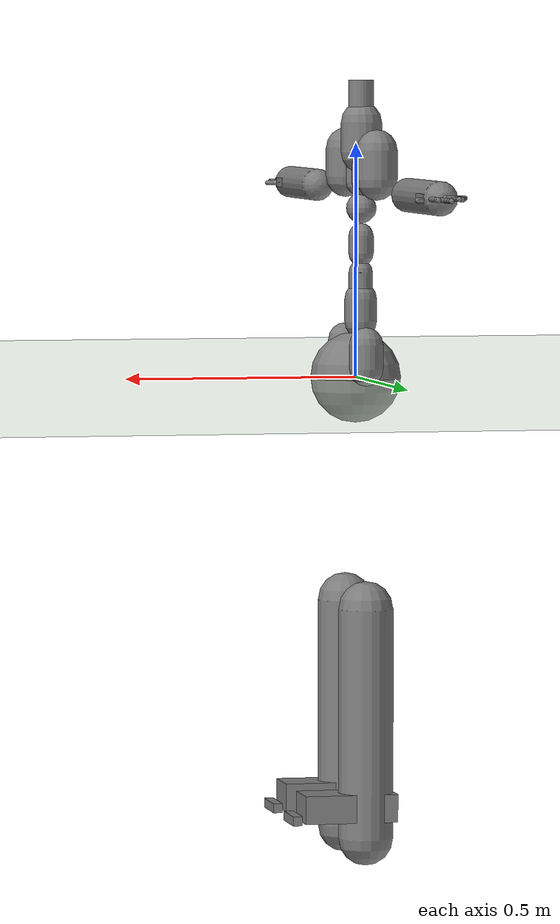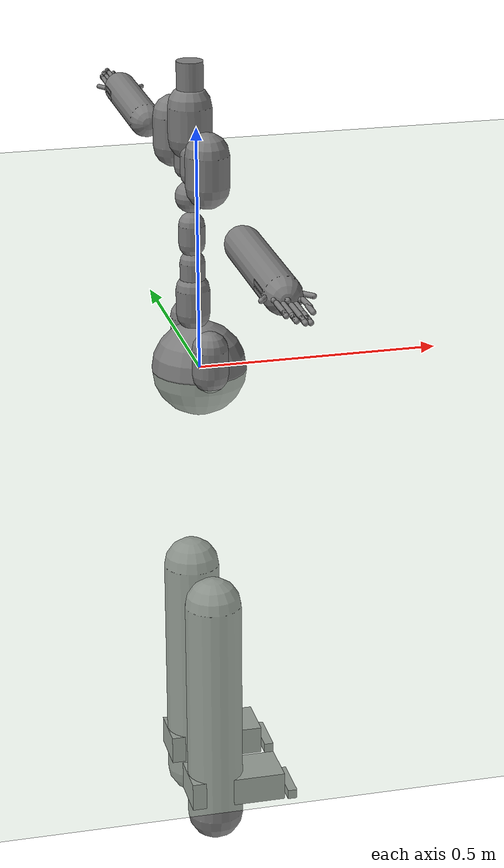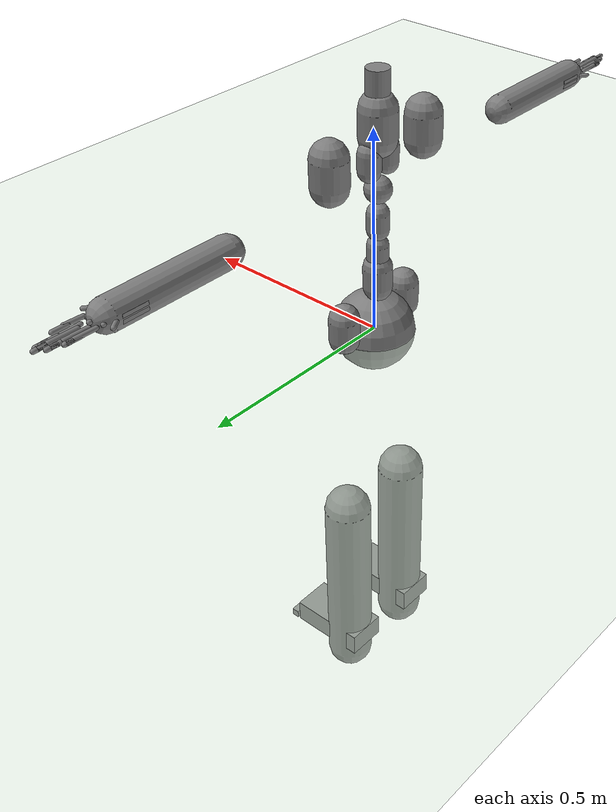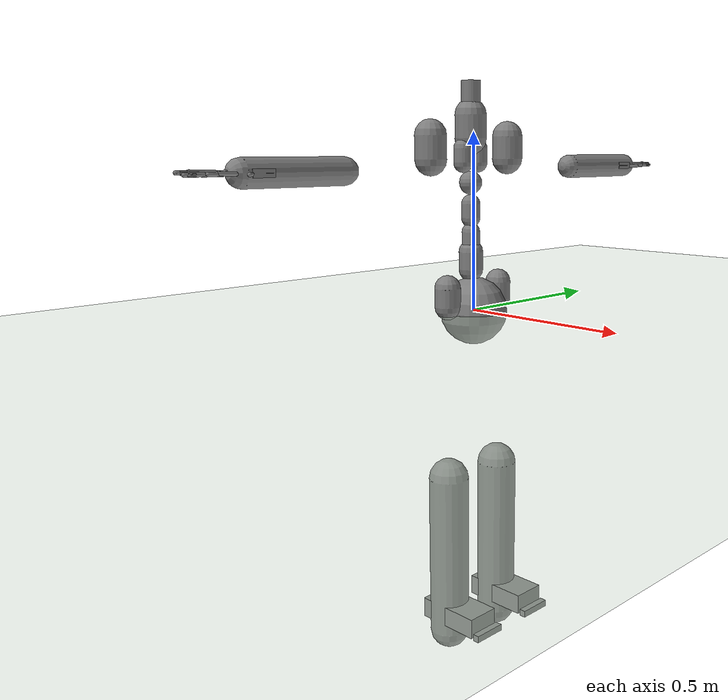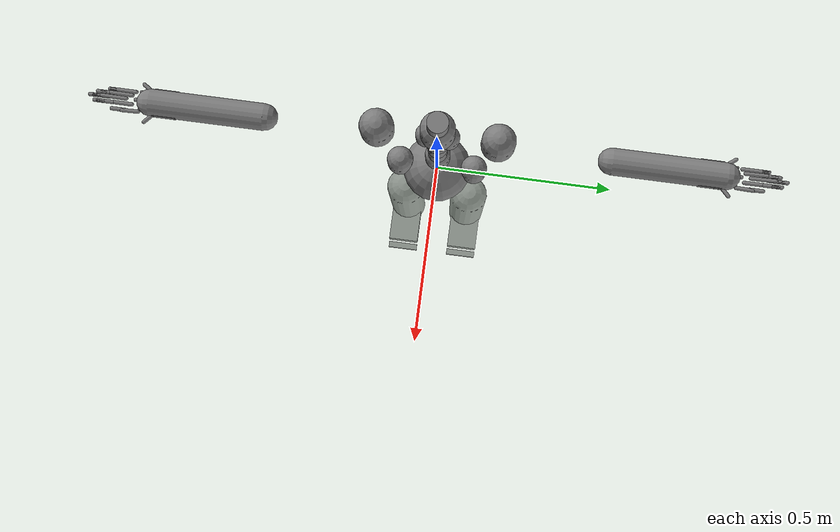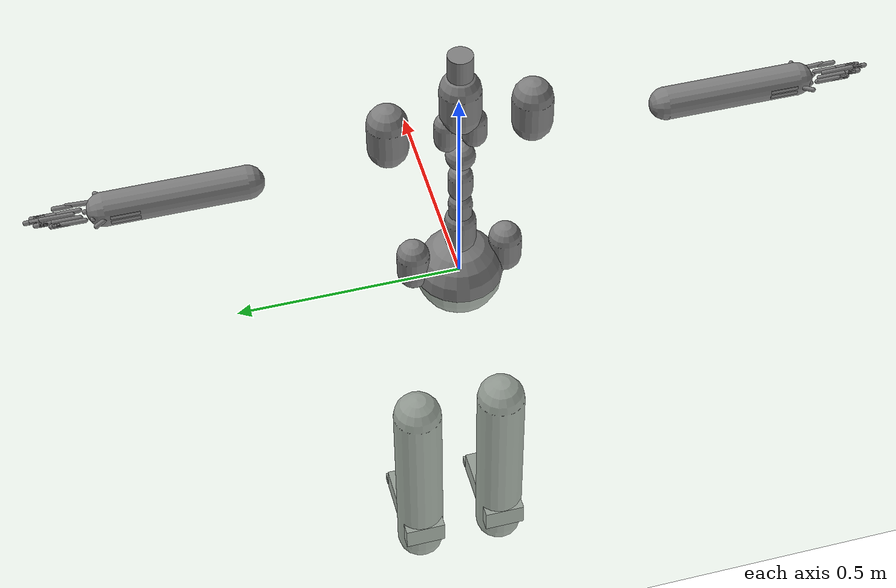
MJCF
<?xml version="1.0" ?>
<mujoco model="humanoid">
  <compiler coordinate="local"/>
  <statistic extent="2" center="0 0 1"/>
  <option timestep="0.00555"/>
  <default>
    <motor ctrlrange="-1 1" ctrllimited="true"/>
    <geom type="capsule" condim="1" friction="1.0 0.05 0.05" solimp=".9 .99 .003" solref=".015 1"/>
    <joint type="hinge" damping="0.1" stiffness="5" armature=".007" limited="true" solimplimit="0 .99 .01"/>
    <site size=".04" group="3"/>
  </default>
  <asset>
    <texture type="skybox" builtin="gradient" rgb1=".4 .5 .6" rgb2="0 0 0" width="100" height="100"/>
    <texture builtin="flat" height="1278" mark="cross" markrgb="1 1 1" name="texgeom" random="0.01" rgb1="0.8 0.6 0.4" rgb2="0.8 0.6 0.4" type="cube" width="127"/>
    <texture builtin="checker" height="100" name="texplane" rgb1="0 0 0" rgb2="0.8 0.8 0.8" type="2d" width="100"/>
    <material name="MatPlane" reflectance="0.5" shininess="1" specular="1" texrepeat="60 60" texture="texplane"/>
    <material name="geom" texture="texgeom" texuniform="true"/>
  </asset>
  <worldbody>
    <light cutoff="100" diffuse="1 1 1" dir="-0 0 -1.3" directional="true" exponent="1" pos="0 0 1.3" specular=".1 .1 .1"/>
    <geom conaffinity="1" condim="3" name="floor" pos="0 0 0" rgba="0.8 0.9 0.8 1" size="100 100 .2" type="plane" material="MatPlane"/>
    <body name="pHipOrigin" pos="0 0 0">
      <freejoint name="pHipOrigin"/>
      <geom type="sphere" contype="1" conaffinity="1" density="4629.6296296296305" size="0.09710" pos="0.0000 0.0000 -0.0000"/>
      <body name="jL5S1" pos="-0.01094197 0 0.09847746">
        <geom type="capsule" contype="1" conaffinity="1" density="1000" fromto="0 0 0.01982 0 0 0.06936" size="0.03468"/>
        <joint name="jL5S1_x" type="hinge" pos="0 0 0" axis="1 0 0" stiffness="500" damping="500" armature="0.02" range="-180.0000 180.0000"/>
        <joint name="jL5S1_y" type="hinge" pos="0 0 0" axis="0 1 0" stiffness="500" damping="500" armature="0.02" range="-180.0000 180.0000"/>
        <joint name="jL5S1_z" type="hinge" pos="0 0 0" axis="0 0 1" stiffness="500" damping="500" armature="0.02" range="-180.0000 180.0000"/>
        <body name="jL4L3" pos="0 0 0.07400486">
          <geom type="capsule" contype="1" conaffinity="1" density="1000" fromto="0 0 0.01480 0 0 0.05180" size="0.02590"/>
          <joint name="jL4L3_x" type="hinge" pos="0 0 0" axis="1 0 0" stiffness="500" damping="500" armature="0.02" range="-180.0000 180.0000"/>
          <joint name="jL4L3_y" type="hinge" pos="0 0 0" axis="0 1 0" stiffness="500" damping="500" armature="0.02" range="-180.0000 180.0000"/>
          <joint name="jL4L3_z" type="hinge" pos="0 0 0" axis="0 0 1" stiffness="500" damping="500" armature="0.02" range="-180.0000 180.0000"/>
          <body name="jL1T12" pos="-0.00058970 0 0.07643582">
            <geom type="capsule" contype="1" conaffinity="1" density="1000" fromto="0 0 0.01529 0 0 0.05351" size="0.02675"/>
            <joint name="jL1T12_x" type="hinge" pos="0 0 0" axis="1 0 0" stiffness="500" damping="500" armature="0.02" range="-180.0000 180.0000"/>
            <joint name="jL1T12_y" type="hinge" pos="0 0 0" axis="0 1 0" stiffness="500" damping="500" armature="0.02" range="-180.0000 180.0000"/>
            <joint name="jL1T12_z" type="hinge" pos="0 0 0" axis="0 0 1" stiffness="500" damping="500" armature="0.02" range="-180.0000 180.0000"/>
            <body name="jT9T8" pos="-0.00062205 0 0.08047241">
              <geom type="sphere" contype="1" conaffinity="1" density="1000" size="0.03219" pos="0.000 0.0000 0.032190"/>
              <joint name="jT9T8_x" type="hinge" pos="0 0 0" axis="1 0 0" stiffness="500" damping="500" armature="0.02" range="-180.0000 180.0000"/>
              <joint name="jT9T8_y" type="hinge" pos="0 0 0" axis="0 1 0" stiffness="500" damping="500" armature="0.02" range="-180.0000 180.0000"/>
              <joint name="jT9T8_z" type="hinge" pos="0 0 0" axis="0 0 1" stiffness="500" damping="500" armature="0.02" range="-180.0000 180.0000"/>
              <body name="jT1C7" pos="0 0 0.12634498">
                <geom type="capsule" contype="1" conaffinity="1" density="1000" fromto="0 0 0.02527 0 0 0.08844" size="0.04422"/>
                <joint name="jT1C7_x" type="hinge" pos="0 0 0" axis="1 0 0" stiffness="500" damping="500" armature="0.02" range="-180.0000 180.0000"/>
                <joint name="jT1C7_y" type="hinge" pos="0 0 0" axis="0 1 0" stiffness="500" damping="500" armature="0.02" range="-180.0000 180.0000"/>
                <joint name="jT1C7_z" type="hinge" pos="0 0 0" axis="0 0 1" stiffness="500" damping="500" armature="0.02" range="-180.0000 180.0000"/>
                <body name="jC1Head" pos="0.00105525 0 0.08944584">
                  <geom type="cylinder" contype="1" conaffinity="1" density="1000" fromto="0 0 0 0 0 0.08945" size="0.02684"/>
                  <joint name="jC1Head_x" type="hinge" pos="0 0 0" axis="1 0 0" stiffness="500" damping="500" armature="0.02" range="-180.0000 180.0000"/>
                  <joint name="jC1Head_y" type="hinge" pos="0 0 0" axis="0 1 0" stiffness="500" damping="500" armature="0.02" range="-180.0000 180.0000"/>
                  <joint name="jC1Head_z" type="hinge" pos="0 0 0" axis="0 0 1" stiffness="500" damping="500" armature="0.02" range="-180.0000 180.0000"/>
                </body>
              </body>
              <body name="jRightT4Shoulder" pos="0 -0.02925832 0.07133821">
                <geom type="capsule" contype="1" conaffinity="1" density="1000" fromto="0 0 0.01542 0 0 0.05397" size="0.02699"/>
                <joint name="jRightT4Shoulder_x" type="hinge" pos="0 0 0" axis="1 0 0" stiffness="500" damping="500" armature="0.02" range="-180.0000 180.0000"/>
                <joint name="jRightT4Shoulder_y" type="hinge" pos="0 0 0" axis="0 1 0" stiffness="500" damping="500" armature="0.02" range="-180.0000 180.0000"/>
                <joint name="jRightT4Shoulder_z" type="hinge" pos="0 0 0" axis="0 0 1" stiffness="500" damping="500" armature="0.02" range="-180.0000 180.0000"/>
                <body name="jRightShoulder" pos="0 -0.12443643 0">
                  <geom type="capsule" contype="1" conaffinity="1" density="1000" fromto="0 0 0.02489 0 0 0.08711" size="0.04355"/>
                  <joint name="jRightShoulder_x" type="hinge" pos="0 0 0" axis="1 0 0" stiffness="500" damping="500" armature="0.02" range="-180.0000 180.0000"/>
                  <joint name="jRightShoulder_y" type="hinge" pos="0 0 0" axis="0 1 0" stiffness="500" damping="500" armature="0.02" range="-180.0000 180.0000"/>
                  <joint name="jRightShoulder_z" type="hinge" pos="0 0 0" axis="0 0 1" stiffness="500" damping="500" armature="0.02" range="-180.0000 180.0000"/>
                  <body name="jRightElbow" pos="0 -0.29274517 0">
                    <geom type="capsule" contype="1" conaffinity="1" density="1000" fromto="0 0 0 0.00000000 -0.29274517 0.00000000" size="0.03513"/>
                    <joint name="jRightElbow_x" type="hinge" pos="0 0 0" axis="1 0 0" stiffness="500" damping="500" armature="0.02" range="-180.0000 180.0000"/>
                    <joint name="jRightElbow_y" type="hinge" pos="0 0 0" axis="0 1 0" stiffness="500" damping="500" armature="0.02" range="-180.0000 180.0000"/>
                    <joint name="jRightElbow_z" type="hinge" pos="0 0 0" axis="0 0 1" stiffness="500" damping="500" armature="0.02" range="-180.0000 180.0000"/>
                    <body name="jRightWrist" pos="0.00010209 -0.25365034 0">
                      <geom density="1000" type="box" pos="0 0 0" size="0.035 0.03 0.01" quat="1.0000 0.0000 0.0000 0.0000"/>
                      <joint name="jRightWrist_x" type="hinge" pos="0 0 0" axis="1 0 0" stiffness="500" damping="500" armature="0.02" range="-180.0000 180.0000"/>
                      <joint name="jRightWrist_y" type="hinge" pos="0 0 0" axis="0 1 0" stiffness="500" damping="500" armature="0.02" range="-180.0000 180.0000"/>
                      <joint name="jRightWrist_z" type="hinge" pos="0 0 0" axis="0 0 1" stiffness="500" damping="500" armature="0.02" range="-180.0000 180.0000"/>
                      <body name="jRightFirstCMC" pos="0.02573850 -0.02467179 -0.00116560">
                        <geom type="capsule" contype="1" conaffinity="1" density="1000" fromto="0 0 0 0.02573850 -0.02467179 -0.00116560" size="0.005"/>
                        <joint name="jRightFirstCMC_x" type="hinge" pos="0 0 0" axis="1 0 0" stiffness="500" damping="500" armature="0.02" range="-180.0000 180.0000"/>
                        <joint name="jRightFirstCMC_y" type="hinge" pos="0 0 0" axis="0 1 0" stiffness="500" damping="500" armature="0.02" range="-180.0000 180.0000"/>
                        <joint name="jRightFirstCMC_z" type="hinge" pos="0 0 0" axis="0 0 1" stiffness="500" damping="500" armature="0.02" range="-180.0000 180.0000"/>
                        <body name="jRightFirstMCP" pos="0.00151179 -0.04266163 0.00090144">
                          <geom type="capsule" contype="1" conaffinity="1" density="1000" fromto="0 0 0 0.00151179 -0.04266163 0.00090144" size="0.005"/>
                          <joint name="jRightFirstMCP_x" type="hinge" pos="0 0 0" axis="1 0 0" stiffness="500" damping="500" armature="0.02" range="-180.0000 180.0000"/>
                          <joint name="jRightFirstMCP_y" type="hinge" pos="0 0 0" axis="0 1 0" stiffness="500" damping="500" armature="0.02" range="-180.0000 180.0000"/>
                          <joint name="jRightFirstMCP_z" type="hinge" pos="0 0 0" axis="0 0 1" stiffness="500" damping="500" armature="0.02" range="-180.0000 180.0000"/>
                          <body name="jRightIP" pos="0 -0.03407430 0">
                            <geom type="capsule" contype="1" conaffinity="1" density="1000" fromto="0 0 0 0.00000000 -0.03407430 0.00000000" size="0.005"/>
                            <joint name="jRightIP_x" type="hinge" pos="0 0 0" axis="1 0 0" stiffness="500" damping="500" armature="0.02" range="-180.0000 180.0000"/>
                            <joint name="jRightIP_y" type="hinge" pos="0 0 0" axis="0 1 0" stiffness="500" damping="500" armature="0.02" range="-180.0000 180.0000"/>
                            <joint name="jRightIP_z" type="hinge" pos="0 0 0" axis="0 0 1" stiffness="500" damping="500" armature="0.02" range="-180.0000 180.0000"/>
                          </body>
                        </body>
                      </body>
                      <body name="jRightSecondCMC" pos="0.01112072 -0.03249121 -0.00056673">
                        <geom type="capsule" contype="1" conaffinity="1" density="1000" fromto="0 0 0 0.01112072 -0.03249121 -0.00056673" size="0.005"/>
                        <joint name="jRightSecondCMC_x" type="hinge" pos="0 0 0" axis="1 0 0" stiffness="500" damping="500" armature="0.02" range="-180.0000 180.0000"/>
                        <joint name="jRightSecondCMC_y" type="hinge" pos="0 0 0" axis="0 1 0" stiffness="500" damping="500" armature="0.02" range="-180.0000 180.0000"/>
                        <joint name="jRightSecondCMC_z" type="hinge" pos="0 0 0" axis="0 0 1" stiffness="500" damping="500" armature="0.02" range="-180.0000 180.0000"/>
                        <body name="jRightSecondMCP" pos="-0.00033891 -0.05405433 -0.00056072">
                          <geom type="capsule" contype="1" conaffinity="1" density="1000" fromto="0 0 0 -0.00033891 -0.05405433 -0.00056072" size="0.005"/>
                          <joint name="jRightSecondMCP_x" type="hinge" pos="0 0 0" axis="1 0 0" stiffness="500" damping="500" armature="0.02" range="-180.0000 180.0000"/>
                          <joint name="jRightSecondMCP_y" type="hinge" pos="0 0 0" axis="0 1 0" stiffness="500" damping="500" armature="0.02" range="-180.0000 180.0000"/>
                          <joint name="jRightSecondMCP_z" type="hinge" pos="0 0 0" axis="0 0 1" stiffness="500" damping="500" armature="0.02" range="-180.0000 180.0000"/>
                          <body name="jRightSecondPIP" pos="0 -0.04823165 0">
                            <geom type="capsule" contype="1" conaffinity="1" density="1000" fromto="0 0 0 0.00000000 -0.04823165 0.00000000" size="0.005"/>
                            <joint name="jRightSecondPIP_x" type="hinge" pos="0 0 0" axis="1 0 0" stiffness="500" damping="500" armature="0.02" range="-180.0000 180.0000"/>
                            <joint name="jRightSecondPIP_y" type="hinge" pos="0 0 0" axis="0 1 0" stiffness="500" damping="500" armature="0.02" range="-180.0000 180.0000"/>
                            <joint name="jRightSecondPIP_z" type="hinge" pos="0 0 0" axis="0 0 1" stiffness="500" damping="500" armature="0.02" range="-180.0000 180.0000"/>
                            <body name="jRightSecondDIP" pos="0 -0.02137110 0">
                              <geom type="capsule" contype="1" conaffinity="1" density="1000" fromto="0 0 0 0.00000000 -0.02137110 0.00000000" size="0.005"/>
                              <joint name="jRightSecondDIP_x" type="hinge" pos="0 0 0" axis="1 0 0" stiffness="500" damping="500" armature="0.02" range="-180.0000 180.0000"/>
                              <joint name="jRightSecondDIP_y" type="hinge" pos="0 0 0" axis="0 1 0" stiffness="500" damping="500" armature="0.02" range="-180.0000 180.0000"/>
                              <joint name="jRightSecondDIP_z" type="hinge" pos="0 0 0" axis="0 0 1" stiffness="500" damping="500" armature="0.02" range="-180.0000 180.0000"/>
                            </body>
                          </body>
                        </body>
                      </body>
                      <body name="jRightThirdCMC" pos="-0.00071286 -0.03854960 0.00162068">
                        <geom type="capsule" contype="1" conaffinity="1" density="1000" fromto="0 0 0 -0.00071286 -0.03854960 0.00162068" size="0.005"/>
                        <joint name="jRightThirdCMC_x" type="hinge" pos="0 0 0" axis="1 0 0" stiffness="500" damping="500" armature="0.02" range="-180.0000 180.0000"/>
                        <joint name="jRightThirdCMC_y" type="hinge" pos="0 0 0" axis="0 1 0" stiffness="500" damping="500" armature="0.02" range="-180.0000 180.0000"/>
                        <joint name="jRightThirdCMC_z" type="hinge" pos="0 0 0" axis="0 0 1" stiffness="500" damping="500" armature="0.02" range="-180.0000 180.0000"/>
                        <body name="jRightThirdMCP" pos="-0.00076003 -0.06296870 0.00171314">
                          <geom type="capsule" contype="1" conaffinity="1" density="1000" fromto="0 0 0 -0.00076003 -0.06296870 0.00171314" size="0.005"/>
                          <joint name="jRightThirdMCP_x" type="hinge" pos="0 0 0" axis="1 0 0" stiffness="500" damping="500" armature="0.02" range="-180.0000 180.0000"/>
                          <joint name="jRightThirdMCP_y" type="hinge" pos="0 0 0" axis="0 1 0" stiffness="500" damping="500" armature="0.02" range="-180.0000 180.0000"/>
                          <joint name="jRightThirdMCP_z" type="hinge" pos="0 0 0" axis="0 0 1" stiffness="500" damping="500" armature="0.02" range="-180.0000 180.0000"/>
                          <body name="jRightThirdPIP" pos="0 -0.04291753 0">
                            <geom type="capsule" contype="1" conaffinity="1" density="1000" fromto="0 0 0 0.00000000 -0.04291753 0.00000000" size="0.005"/>
                            <joint name="jRightThirdPIP_x" type="hinge" pos="0 0 0" axis="1 0 0" stiffness="500" damping="500" armature="0.02" range="-180.0000 180.0000"/>
                            <joint name="jRightThirdPIP_y" type="hinge" pos="0 0 0" axis="0 1 0" stiffness="500" damping="500" armature="0.02" range="-180.0000 180.0000"/>
                            <joint name="jRightThirdPIP_z" type="hinge" pos="0 0 0" axis="0 0 1" stiffness="500" damping="500" armature="0.02" range="-180.0000 180.0000"/>
                            <body name="jRightThirdDIP" pos="0 -0.02528631 0">
                              <geom type="capsule" contype="1" conaffinity="1" density="1000" fromto="0 0 0 0.00000000 -0.02528631 0.00000000" size="0.005"/>
                              <joint name="jRightThirdDIP_x" type="hinge" pos="0 0 0" axis="1 0 0" stiffness="500" damping="500" armature="0.02" range="-180.0000 180.0000"/>
                              <joint name="jRightThirdDIP_y" type="hinge" pos="0 0 0" axis="0 1 0" stiffness="500" damping="500" armature="0.02" range="-180.0000 180.0000"/>
                              <joint name="jRightThirdDIP_z" type="hinge" pos="0 0 0" axis="0 0 1" stiffness="500" damping="500" armature="0.02" range="-180.0000 180.0000"/>
                            </body>
                          </body>
                        </body>
                      </body>
                      <body name="jRightFourthCMC" pos="-0.01161701 -0.03235530 0.00076159">
                        <geom type="capsule" contype="1" conaffinity="1" density="1000" fromto="0 0 0 -0.01161701 -0.03235530 0.00076159" size="0.005"/>
                        <joint name="jRightFourthCMC_x" type="hinge" pos="0 0 0" axis="1 0 0" stiffness="500" damping="500" armature="0.02" range="-180.0000 180.0000"/>
                        <joint name="jRightFourthCMC_y" type="hinge" pos="0 0 0" axis="0 1 0" stiffness="500" damping="500" armature="0.02" range="-180.0000 180.0000"/>
                        <joint name="jRightFourthCMC_z" type="hinge" pos="0 0 0" axis="0 0 1" stiffness="500" damping="500" armature="0.02" range="-180.0000 180.0000"/>
                        <body name="jRightFourthMCP" pos="-0.00040319 -0.05526105 0.00086819">
                          <geom type="capsule" contype="1" conaffinity="1" density="1000" fromto="0 0 0 -0.00040319 -0.05526105 0.00086819" size="0.005"/>
                          <joint name="jRightFourthMCP_x" type="hinge" pos="0 0 0" axis="1 0 0" stiffness="500" damping="500" armature="0.02" range="-180.0000 180.0000"/>
                          <joint name="jRightFourthMCP_y" type="hinge" pos="0 0 0" axis="0 1 0" stiffness="500" damping="500" armature="0.02" range="-180.0000 180.0000"/>
                          <joint name="jRightFourthMCP_z" type="hinge" pos="0 0 0" axis="0 0 1" stiffness="500" damping="500" armature="0.02" range="-180.0000 180.0000"/>
                          <body name="jRightFourthPIP" pos="0 -0.04075918 0">
                            <geom type="capsule" contype="1" conaffinity="1" density="1000" fromto="0 0 0 0.00000000 -0.04075918 0.00000000" size="0.005"/>
                            <joint name="jRightFourthPIP_x" type="hinge" pos="0 0 0" axis="1 0 0" stiffness="500" damping="500" armature="0.02" range="-180.0000 180.0000"/>
                            <joint name="jRightFourthPIP_y" type="hinge" pos="0 0 0" axis="0 1 0" stiffness="500" damping="500" armature="0.02" range="-180.0000 180.0000"/>
                            <joint name="jRightFourthPIP_z" type="hinge" pos="0 0 0" axis="0 0 1" stiffness="500" damping="500" armature="0.02" range="-180.0000 180.0000"/>
                            <body name="jRightFourthDIP" pos="0 -0.02408913 0">
                              <geom type="capsule" contype="1" conaffinity="1" density="1000" fromto="0 0 0 0.00000000 -0.02408913 0.00000000" size="0.005"/>
                              <joint name="jRightFourthDIP_x" type="hinge" pos="0 0 0" axis="1 0 0" stiffness="500" damping="500" armature="0.02" range="-180.0000 180.0000"/>
                              <joint name="jRightFourthDIP_y" type="hinge" pos="0 0 0" axis="0 1 0" stiffness="500" damping="500" armature="0.02" range="-180.0000 180.0000"/>
                              <joint name="jRightFourthDIP_z" type="hinge" pos="0 0 0" axis="0 0 1" stiffness="500" damping="500" armature="0.02" range="-180.0000 180.0000"/>
                            </body>
                          </body>
                        </body>
                      </body>
                      <body name="jRightFifthCMC" pos="-0.02190992 -0.03052898 0.00060224">
                        <geom type="capsule" contype="1" conaffinity="1" density="1000" fromto="0 0 0 -0.02190992 -0.03052898 0.00060224" size="0.005"/>
                        <joint name="jRightFifthCMC_x" type="hinge" pos="0 0 0" axis="1 0 0" stiffness="500" damping="500" armature="0.02" range="-180.0000 180.0000"/>
                        <joint name="jRightFifthCMC_y" type="hinge" pos="0 0 0" axis="0 1 0" stiffness="500" damping="500" armature="0.02" range="-180.0000 180.0000"/>
                        <joint name="jRightFifthCMC_z" type="hinge" pos="0 0 0" axis="0 0 1" stiffness="500" damping="500" armature="0.02" range="-180.0000 180.0000"/>
                        <body name="jRightFifthMCP" pos="-0.00000716 -0.04846844 0.00066699">
                          <geom type="capsule" contype="1" conaffinity="1" density="1000" fromto="0 0 0 -0.00000716 -0.04846844 0.00066699" size="0.005"/>
                          <joint name="jRightFifthMCP_x" type="hinge" pos="0 0 0" axis="1 0 0" stiffness="500" damping="500" armature="0.02" range="-180.0000 180.0000"/>
                          <joint name="jRightFifthMCP_y" type="hinge" pos="0 0 0" axis="0 1 0" stiffness="500" damping="500" armature="0.02" range="-180.0000 180.0000"/>
                          <joint name="jRightFifthMCP_z" type="hinge" pos="0 0 0" axis="0 0 1" stiffness="500" damping="500" armature="0.02" range="-180.0000 180.0000"/>
                          <body name="jRightFifthPIP" pos="0 -0.03392392 0">
                            <geom type="capsule" contype="1" conaffinity="1" density="1000" fromto="0 0 0 0.00000000 -0.03392392 0.00000000" size="0.005"/>
                            <joint name="jRightFifthPIP_x" type="hinge" pos="0 0 0" axis="1 0 0" stiffness="500" damping="500" armature="0.02" range="-180.0000 180.0000"/>
                            <joint name="jRightFifthPIP_y" type="hinge" pos="0 0 0" axis="0 1 0" stiffness="500" damping="500" armature="0.02" range="-180.0000 180.0000"/>
                            <joint name="jRightFifthPIP_z" type="hinge" pos="0 0 0" axis="0 0 1" stiffness="500" damping="500" armature="0.02" range="-180.0000 180.0000"/>
                            <body name="jRightFifthDIP" pos="0 -0.01613869 0">
                              <geom type="capsule" contype="1" conaffinity="1" density="1000" fromto="0 0 0 0.00000000 -0.01613869 0.00000000" size="0.005"/>
                              <joint name="jRightFifthDIP_x" type="hinge" pos="0 0 0" axis="1 0 0" stiffness="500" damping="500" armature="0.02" range="-180.0000 180.0000"/>
                              <joint name="jRightFifthDIP_y" type="hinge" pos="0 0 0" axis="0 1 0" stiffness="500" damping="500" armature="0.02" range="-180.0000 180.0000"/>
                              <joint name="jRightFifthDIP_z" type="hinge" pos="0 0 0" axis="0 0 1" stiffness="500" damping="500" armature="0.02" range="-180.0000 180.0000"/>
                            </body>
                          </body>
                        </body>
                      </body>
                    </body>
                  </body>
                </body>
              </body>
              <body name="jLeftT4Shoulder" pos="0 0.02917826 0.07114300">
                <geom type="capsule" contype="1" conaffinity="1" density="1000" fromto="0 0 0.01538 0 0 0.05383" size="0.02691"/>
                <joint name="jLeftT4Shoulder_x" type="hinge" pos="0 0 0" axis="1 0 0" stiffness="500" damping="500" armature="0.02" range="-180.0000 180.0000"/>
                <joint name="jLeftT4Shoulder_y" type="hinge" pos="0 0 0" axis="0 1 0" stiffness="500" damping="500" armature="0.02" range="-180.0000 180.0000"/>
                <joint name="jLeftT4Shoulder_z" type="hinge" pos="0 0 0" axis="0 0 1" stiffness="500" damping="500" armature="0.02" range="-180.0000 180.0000"/>
                <body name="jLeftShoulder" pos="0 0.12417934 0">
                  <geom type="capsule" contype="1" conaffinity="1" density="1000" fromto="0 0 0.02484 0 0 0.08693" size="0.04346"/>
                  <joint name="jLeftShoulder_x" type="hinge" pos="0 0 0" axis="1 0 0" stiffness="500" damping="500" armature="0.02" range="-180.0000 180.0000"/>
                  <joint name="jLeftShoulder_y" type="hinge" pos="0 0 0" axis="0 1 0" stiffness="500" damping="500" armature="0.02" range="-180.0000 180.0000"/>
                  <joint name="jLeftShoulder_z" type="hinge" pos="0 0 0" axis="0 0 1" stiffness="500" damping="500" armature="0.02" range="-180.0000 180.0000"/>
                  <body name="jLeftElbow" pos="0 0.29295480 0">
                    <geom type="capsule" contype="1" conaffinity="1" density="1000" fromto="0 0 0 0.00000000 0.29295480 0.00000000" size="0.03515"/>
                    <joint name="jLeftElbow_x" type="hinge" pos="0 0 0" axis="1 0 0" stiffness="500" damping="500" armature="0.02" range="-180.0000 180.0000"/>
                    <joint name="jLeftElbow_y" type="hinge" pos="0 0 0" axis="0 1 0" stiffness="500" damping="500" armature="0.02" range="-180.0000 180.0000"/>
                    <joint name="jLeftElbow_z" type="hinge" pos="0 0 0" axis="0 0 1" stiffness="500" damping="500" armature="0.02" range="-180.0000 180.0000"/>
                    <body name="jLeftWrist" pos="0.00010190 0.25317598 0">
                      <geom density="1000" type="box" pos="0 0 0" size="0.035 0.03 0.01" quat="1.0000 0.0000 0.0000 0.0000"/>
                      <joint name="jLeftWrist_x" type="hinge" pos="0 0 0" axis="1 0 0" stiffness="500" damping="500" armature="0.02" range="-180.0000 180.0000"/>
                      <joint name="jLeftWrist_y" type="hinge" pos="0 0 0" axis="0 1 0" stiffness="500" damping="500" armature="0.02" range="-180.0000 180.0000"/>
                      <joint name="jLeftWrist_z" type="hinge" pos="0 0 0" axis="0 0 1" stiffness="500" damping="500" armature="0.02" range="-180.0000 180.0000"/>
                      <body name="jLeftFirstCMC" pos="0.02519193 0.02525142 -0.00112751">
                        <geom type="capsule" contype="1" conaffinity="1" density="1000" fromto="0 0 0 0.02519193 0.02525142 -0.00112751" size="0.005"/>
                        <joint name="jLeftFirstCMC_x" type="hinge" pos="0 0 0" axis="1 0 0" stiffness="500" damping="500" armature="0.02" range="-180.0000 180.0000"/>
                        <joint name="jLeftFirstCMC_y" type="hinge" pos="0 0 0" axis="0 1 0" stiffness="500" damping="500" armature="0.02" range="-180.0000 180.0000"/>
                        <joint name="jLeftFirstCMC_z" type="hinge" pos="0 0 0" axis="0 0 1" stiffness="500" damping="500" armature="0.02" range="-180.0000 180.0000"/>
                        <body name="jLeftFirstMCP" pos="0.00149722 0.04266066 0.00087849">
                          <geom type="capsule" contype="1" conaffinity="1" density="1000" fromto="0 0 0 0.00149722 0.04266066 0.00087849" size="0.005"/>
                          <joint name="jLeftFirstMCP_x" type="hinge" pos="0 0 0" axis="1 0 0" stiffness="500" damping="500" armature="0.02" range="-180.0000 180.0000"/>
                          <joint name="jLeftFirstMCP_y" type="hinge" pos="0 0 0" axis="0 1 0" stiffness="500" damping="500" armature="0.02" range="-180.0000 180.0000"/>
                          <joint name="jLeftFirstMCP_z" type="hinge" pos="0 0 0" axis="0 0 1" stiffness="500" damping="500" armature="0.02" range="-180.0000 180.0000"/>
                          <body name="jLeftIP" pos="0 0.03407430 0">
                            <geom type="capsule" contype="1" conaffinity="1" density="1000" fromto="0 0 0 0.00000000 0.03407430 0.00000000" size="0.005"/>
                            <joint name="jLeftIP_x" type="hinge" pos="0 0 0" axis="1 0 0" stiffness="500" damping="500" armature="0.02" range="-180.0000 180.0000"/>
                            <joint name="jLeftIP_y" type="hinge" pos="0 0 0" axis="0 1 0" stiffness="500" damping="500" armature="0.02" range="-180.0000 180.0000"/>
                            <joint name="jLeftIP_z" type="hinge" pos="0 0 0" axis="0 0 1" stiffness="500" damping="500" armature="0.02" range="-180.0000 180.0000"/>
                          </body>
                        </body>
                      </body>
                      <body name="jLeftSecondCMC" pos="0.01124881 0.03243143 -0.00057141">
                        <geom type="capsule" contype="1" conaffinity="1" density="1000" fromto="0 0 0 0.01124881 0.03243143 -0.00057141" size="0.005"/>
                        <joint name="jLeftSecondCMC_x" type="hinge" pos="0 0 0" axis="1 0 0" stiffness="500" damping="500" armature="0.02" range="-180.0000 180.0000"/>
                        <joint name="jLeftSecondCMC_y" type="hinge" pos="0 0 0" axis="0 1 0" stiffness="500" damping="500" armature="0.02" range="-180.0000 180.0000"/>
                        <joint name="jLeftSecondCMC_z" type="hinge" pos="0 0 0" axis="0 0 1" stiffness="500" damping="500" armature="0.02" range="-180.0000 180.0000"/>
                        <body name="jLeftSecondMCP" pos="-0.00029551 0.05405544 -0.00056765">
                          <geom type="capsule" contype="1" conaffinity="1" density="1000" fromto="0 0 0 -0.00029551 0.05405544 -0.00056765" size="0.005"/>
                          <joint name="jLeftSecondMCP_x" type="hinge" pos="0 0 0" axis="1 0 0" stiffness="500" damping="500" armature="0.02" range="-180.0000 180.0000"/>
                          <joint name="jLeftSecondMCP_y" type="hinge" pos="0 0 0" axis="0 1 0" stiffness="500" damping="500" armature="0.02" range="-180.0000 180.0000"/>
                          <joint name="jLeftSecondMCP_z" type="hinge" pos="0 0 0" axis="0 0 1" stiffness="500" damping="500" armature="0.02" range="-180.0000 180.0000"/>
                          <body name="jLeftSecondPIP" pos="0 0.04823165 0">
                            <geom type="capsule" contype="1" conaffinity="1" density="1000" fromto="0 0 0 0.00000000 0.04823165 0.00000000" size="0.005"/>
                            <joint name="jLeftSecondPIP_x" type="hinge" pos="0 0 0" axis="1 0 0" stiffness="500" damping="500" armature="0.02" range="-180.0000 180.0000"/>
                            <joint name="jLeftSecondPIP_y" type="hinge" pos="0 0 0" axis="0 1 0" stiffness="500" damping="500" armature="0.02" range="-180.0000 180.0000"/>
                            <joint name="jLeftSecondPIP_z" type="hinge" pos="0 0 0" axis="0 0 1" stiffness="500" damping="500" armature="0.02" range="-180.0000 180.0000"/>
                            <body name="jLeftSecondDIP" pos="0 0.02137110 0">
                              <geom type="capsule" contype="1" conaffinity="1" density="1000" fromto="0 0 0 0.00000000 0.02137110 0.00000000" size="0.005"/>
                              <joint name="jLeftSecondDIP_x" type="hinge" pos="0 0 0" axis="1 0 0" stiffness="500" damping="500" armature="0.02" range="-180.0000 180.0000"/>
                              <joint name="jLeftSecondDIP_y" type="hinge" pos="0 0 0" axis="0 1 0" stiffness="500" damping="500" armature="0.02" range="-180.0000 180.0000"/>
                              <joint name="jLeftSecondDIP_z" type="hinge" pos="0 0 0" axis="0 0 1" stiffness="500" damping="500" armature="0.02" range="-180.0000 180.0000"/>
                            </body>
                          </body>
                        </body>
                      </body>
                      <body name="jLeftThirdCMC" pos="-0.00071704 0.03855306 0.00156666">
                        <geom type="capsule" contype="1" conaffinity="1" density="1000" fromto="0 0 0 -0.00071704 0.03855306 0.00156666" size="0.005"/>
                        <joint name="jLeftThirdCMC_x" type="hinge" pos="0 0 0" axis="1 0 0" stiffness="500" damping="500" armature="0.02" range="-180.0000 180.0000"/>
                        <joint name="jLeftThirdCMC_y" type="hinge" pos="0 0 0" axis="0 1 0" stiffness="500" damping="500" armature="0.02" range="-180.0000 180.0000"/>
                        <joint name="jLeftThirdCMC_z" type="hinge" pos="0 0 0" axis="0 0 1" stiffness="500" damping="500" armature="0.02" range="-180.0000 180.0000"/>
                        <body name="jLeftThirdMCP" pos="-0.00076617 0.06296992 0.00167870">
                          <geom type="capsule" contype="1" conaffinity="1" density="1000" fromto="0 0 0 -0.00076617 0.06296992 0.00167870" size="0.005"/>
                          <joint name="jLeftThirdMCP_x" type="hinge" pos="0 0 0" axis="1 0 0" stiffness="500" damping="500" armature="0.02" range="-180.0000 180.0000"/>
                          <joint name="jLeftThirdMCP_y" type="hinge" pos="0 0 0" axis="0 1 0" stiffness="500" damping="500" armature="0.02" range="-180.0000 180.0000"/>
                          <joint name="jLeftThirdMCP_z" type="hinge" pos="0 0 0" axis="0 0 1" stiffness="500" damping="500" armature="0.02" range="-180.0000 180.0000"/>
                          <body name="jLeftThirdPIP" pos="0 0.04291753 0">
                            <geom type="capsule" contype="1" conaffinity="1" density="1000" fromto="0 0 0 0.00000000 0.04291753 0.00000000" size="0.005"/>
                            <joint name="jLeftThirdPIP_x" type="hinge" pos="0 0 0" axis="1 0 0" stiffness="500" damping="500" armature="0.02" range="-180.0000 180.0000"/>
                            <joint name="jLeftThirdPIP_y" type="hinge" pos="0 0 0" axis="0 1 0" stiffness="500" damping="500" armature="0.02" range="-180.0000 180.0000"/>
                            <joint name="jLeftThirdPIP_z" type="hinge" pos="0 0 0" axis="0 0 1" stiffness="500" damping="500" armature="0.02" range="-180.0000 180.0000"/>
                            <body name="jLeftThirdDIP" pos="0 0.02528631 0">
                              <geom type="capsule" contype="1" conaffinity="1" density="1000" fromto="0 0 0 0.00000000 0.02528631 0.00000000" size="0.005"/>
                              <joint name="jLeftThirdDIP_x" type="hinge" pos="0 0 0" axis="1 0 0" stiffness="500" damping="500" armature="0.02" range="-180.0000 180.0000"/>
                              <joint name="jLeftThirdDIP_y" type="hinge" pos="0 0 0" axis="0 1 0" stiffness="500" damping="500" armature="0.02" range="-180.0000 180.0000"/>
                              <joint name="jLeftThirdDIP_z" type="hinge" pos="0 0 0" axis="0 0 1" stiffness="500" damping="500" armature="0.02" range="-180.0000 180.0000"/>
                            </body>
                          </body>
                        </body>
                      </body>
                      <body name="jLeftFourthCMC" pos="-0.01204328 0.03218980 0.00081299">
                        <geom type="capsule" contype="1" conaffinity="1" density="1000" fromto="0 0 0 -0.01204328 0.03218980 0.00081299" size="0.005"/>
                        <joint name="jLeftFourthCMC_x" type="hinge" pos="0 0 0" axis="1 0 0" stiffness="500" damping="500" armature="0.02" range="-180.0000 180.0000"/>
                        <joint name="jLeftFourthCMC_y" type="hinge" pos="0 0 0" axis="0 1 0" stiffness="500" damping="500" armature="0.02" range="-180.0000 180.0000"/>
                        <joint name="jLeftFourthCMC_z" type="hinge" pos="0 0 0" axis="0 0 1" stiffness="500" damping="500" armature="0.02" range="-180.0000 180.0000"/>
                        <body name="jLeftFourthMCP" pos="-0.00043359 0.05525789 0.00091822">
                          <geom type="capsule" contype="1" conaffinity="1" density="1000" fromto="0 0 0 -0.00043359 0.05525789 0.00091822" size="0.005"/>
                          <joint name="jLeftFourthMCP_x" type="hinge" pos="0 0 0" axis="1 0 0" stiffness="500" damping="500" armature="0.02" range="-180.0000 180.0000"/>
                          <joint name="jLeftFourthMCP_y" type="hinge" pos="0 0 0" axis="0 1 0" stiffness="500" damping="500" armature="0.02" range="-180.0000 180.0000"/>
                          <joint name="jLeftFourthMCP_z" type="hinge" pos="0 0 0" axis="0 0 1" stiffness="500" damping="500" armature="0.02" range="-180.0000 180.0000"/>
                          <body name="jLeftFourthPIP" pos="0 0.04075918 0">
                            <geom type="capsule" contype="1" conaffinity="1" density="1000" fromto="0 0 0 0.00000000 0.04075918 0.00000000" size="0.005"/>
                            <joint name="jLeftFourthPIP_x" type="hinge" pos="0 0 0" axis="1 0 0" stiffness="500" damping="500" armature="0.02" range="-180.0000 180.0000"/>
                            <joint name="jLeftFourthPIP_y" type="hinge" pos="0 0 0" axis="0 1 0" stiffness="500" damping="500" armature="0.02" range="-180.0000 180.0000"/>
                            <joint name="jLeftFourthPIP_z" type="hinge" pos="0 0 0" axis="0 0 1" stiffness="500" damping="500" armature="0.02" range="-180.0000 180.0000"/>
                            <body name="jLeftFourthDIP" pos="0 0.02408913 0">
                              <geom type="capsule" contype="1" conaffinity="1" density="1000" fromto="0 0 0 0.00000000 0.02408913 0.00000000" size="0.005"/>
                              <joint name="jLeftFourthDIP_x" type="hinge" pos="0 0 0" axis="1 0 0" stiffness="500" damping="500" armature="0.02" range="-180.0000 180.0000"/>
                              <joint name="jLeftFourthDIP_y" type="hinge" pos="0 0 0" axis="0 1 0" stiffness="500" damping="500" armature="0.02" range="-180.0000 180.0000"/>
                              <joint name="jLeftFourthDIP_z" type="hinge" pos="0 0 0" axis="0 0 1" stiffness="500" damping="500" armature="0.02" range="-180.0000 180.0000"/>
                            </body>
                          </body>
                        </body>
                      </body>
                      <body name="jLeftFifthCMC" pos="-0.02257366 0.03004634 0.00061192">
                        <geom type="capsule" contype="1" conaffinity="1" density="1000" fromto="0 0 0 -0.02257366 0.03004634 0.00061192" size="0.005"/>
                        <joint name="jLeftFifthCMC_x" type="hinge" pos="0 0 0" axis="1 0 0" stiffness="500" damping="500" armature="0.02" range="-180.0000 180.0000"/>
                        <joint name="jLeftFifthCMC_y" type="hinge" pos="0 0 0" axis="0 1 0" stiffness="500" damping="500" armature="0.02" range="-180.0000 180.0000"/>
                        <joint name="jLeftFifthCMC_z" type="hinge" pos="0 0 0" axis="0 0 1" stiffness="500" damping="500" armature="0.02" range="-180.0000 180.0000"/>
                        <body name="jLeftFifthMCP" pos="-0.00001375 0.04846712 0.00069741">
                          <geom type="capsule" contype="1" conaffinity="1" density="1000" fromto="0 0 0 -0.00001375 0.04846712 0.00069741" size="0.005"/>
                          <joint name="jLeftFifthMCP_x" type="hinge" pos="0 0 0" axis="1 0 0" stiffness="500" damping="500" armature="0.02" range="-180.0000 180.0000"/>
                          <joint name="jLeftFifthMCP_y" type="hinge" pos="0 0 0" axis="0 1 0" stiffness="500" damping="500" armature="0.02" range="-180.0000 180.0000"/>
                          <joint name="jLeftFifthMCP_z" type="hinge" pos="0 0 0" axis="0 0 1" stiffness="500" damping="500" armature="0.02" range="-180.0000 180.0000"/>
                          <body name="jLeftFifthPIP" pos="0 0.03392392 0">
                            <geom type="capsule" contype="1" conaffinity="1" density="1000" fromto="0 0 0 0.00000000 0.03392392 0.00000000" size="0.005"/>
                            <joint name="jLeftFifthPIP_x" type="hinge" pos="0 0 0" axis="1 0 0" stiffness="500" damping="500" armature="0.02" range="-180.0000 180.0000"/>
                            <joint name="jLeftFifthPIP_y" type="hinge" pos="0 0 0" axis="0 1 0" stiffness="500" damping="500" armature="0.02" range="-180.0000 180.0000"/>
                            <joint name="jLeftFifthPIP_z" type="hinge" pos="0 0 0" axis="0 0 1" stiffness="500" damping="500" armature="0.02" range="-180.0000 180.0000"/>
                            <body name="jLeftFifthDIP" pos="0 0.01613869 0">
                              <geom type="capsule" contype="1" conaffinity="1" density="1000" fromto="0 0 0 0.00000000 0.01613869 0.00000000" size="0.005"/>
                              <joint name="jLeftFifthDIP_x" type="hinge" pos="0 0 0" axis="1 0 0" stiffness="500" damping="500" armature="0.02" range="-180.0000 180.0000"/>
                              <joint name="jLeftFifthDIP_y" type="hinge" pos="0 0 0" axis="0 1 0" stiffness="500" damping="500" armature="0.02" range="-180.0000 180.0000"/>
                              <joint name="jLeftFifthDIP_z" type="hinge" pos="0 0 0" axis="0 0 1" stiffness="500" damping="500" armature="0.02" range="-180.0000 180.0000"/>
                            </body>
                          </body>
                        </body>
                      </body>
                    </body>
                  </body>
                </body>
              </body>
            </body>
          </body>
        </body>
      </body>
      <body name="jRightHip" pos="-0.00017719 -0.10515210 0.00159513">
        <geom type="capsule" contype="1" conaffinity="1" density="1000" fromto="0 0 0.02103 0 0 0.07362" size="0.03681"/>
        <joint name="jRightHip_x" type="hinge" pos="0 0 0" axis="1 0 0" stiffness="500" damping="500" armature="0.02" range="-180.0000 180.0000"/>
        <joint name="jRightHip_y" type="hinge" pos="0 0 0" axis="0 1 0" stiffness="500" damping="500" armature="0.02" range="-180.0000 180.0000"/>
        <joint name="jRightHip_z" type="hinge" pos="0 0 0" axis="0 0 1" stiffness="500" damping="500" armature="0.02" range="-180.0000 180.0000"/>
        <body name="jRightKnee" pos="0.00005842 0 -0.48996594">
          <geom type="capsule" contype="1" conaffinity="1" density="1000" fromto="0 0 0 0.00005842 0.00000000 -0.48996594" size="0.05880"/>
          <joint name="jRightKnee_x" type="hinge" pos="0 0 0" axis="1 0 0" stiffness="500" damping="500" armature="0.02" range="-180.0000 180.0000"/>
          <joint name="jRightKnee_y" type="hinge" pos="0 0 0" axis="0 1 0" stiffness="500" damping="500" armature="0.02" range="-180.0000 180.0000"/>
          <joint name="jRightKnee_z" type="hinge" pos="0 0 0" axis="0 0 1" stiffness="500" damping="500" armature="0.02" range="-180.0000 180.0000"/>
          <body name="jRightAnkle" pos="0.00044377 0 -0.39301282">
            <geom density="1000" type="box" pos="0.04 0. -0.03" size="0.1 0.05 0.03" quat="1.0 0 0 0"/>
            <joint name="jRightAnkle_x" type="hinge" pos="0 0 0" axis="1 0 0" stiffness="500" damping="500" armature="0.02" range="-180.0000 180.0000"/>
            <joint name="jRightAnkle_y" type="hinge" pos="0 0 0" axis="0 1 0" stiffness="500" damping="500" armature="0.02" range="-180.0000 180.0000"/>
            <joint name="jRightAnkle_z" type="hinge" pos="0 0 0" axis="0 0 1" stiffness="500" damping="500" armature="0.02" range="-180.0000 180.0000"/>
            <body name="jRightBallFoot" pos="0.15755338 0 -0.07227935">
              <geom density="1000" type="box" pos="0 0 0.02" size="0.01 0.05 0.01" quat="1.0 0 0 0"/>
              <joint name="jRightBallFoot_x" type="hinge" pos="0 0 0" axis="1 0 0" stiffness="500" damping="500" armature="0.02" range="-180.0000 180.0000"/>
              <joint name="jRightBallFoot_y" type="hinge" pos="0 0 0" axis="0 1 0" stiffness="500" damping="500" armature="0.02" range="-180.0000 180.0000"/>
              <joint name="jRightBallFoot_z" type="hinge" pos="0 0 0" axis="0 0 1" stiffness="500" damping="500" armature="0.02" range="-180.0000 180.0000"/>
            </body>
          </body>
        </body>
      </body>
      <body name="jLeftHip" pos="-0.00017306 0.10404393 0.00155744">
        <geom type="capsule" contype="1" conaffinity="1" density="1000" fromto="0 0 0.02081 0 0 0.07284" size="0.03642"/>
        <joint name="jLeftHip_x" type="hinge" pos="0 0 0" axis="1 0 0" stiffness="500" damping="500" armature="0.02" range="-180.0000 180.0000"/>
        <joint name="jLeftHip_y" type="hinge" pos="0 0 0" axis="0 1 0" stiffness="500" damping="500" armature="0.02" range="-180.0000 180.0000"/>
        <joint name="jLeftHip_z" type="hinge" pos="0 0 0" axis="0 0 1" stiffness="500" damping="500" armature="0.02" range="-180.0000 180.0000"/>
        <body name="jLeftKnee" pos="0.00005853 0 -0.49088898">
          <geom type="capsule" contype="1" conaffinity="1" density="1000" fromto="0 0 0 0.00005853 0.00000000 -0.49088898" size="0.05891"/>
          <joint name="jLeftKnee_x" type="hinge" pos="0 0 0" axis="1 0 0" stiffness="500" damping="500" armature="0.02" range="-180.0000 180.0000"/>
          <joint name="jLeftKnee_y" type="hinge" pos="0 0 0" axis="0 1 0" stiffness="500" damping="500" armature="0.02" range="-180.0000 180.0000"/>
          <joint name="jLeftKnee_z" type="hinge" pos="0 0 0" axis="0 0 1" stiffness="500" damping="500" armature="0.02" range="-180.0000 180.0000"/>
          <body name="jLeftAnkle" pos="0.00044377 0 -0.39301273">
            <geom density="1000" type="box" pos="0.04 0. -0.03" size="0.1 0.05 0.03" quat="1.0 0 0 0"/>
            <joint name="jLeftAnkle_x" type="hinge" pos="0 0 0" axis="1 0 0" stiffness="500" damping="500" armature="0.02" range="-180.0000 180.0000"/>
            <joint name="jLeftAnkle_y" type="hinge" pos="0 0 0" axis="0 1 0" stiffness="500" damping="500" armature="0.02" range="-180.0000 180.0000"/>
            <joint name="jLeftAnkle_z" type="hinge" pos="0 0 0" axis="0 0 1" stiffness="500" damping="500" armature="0.02" range="-180.0000 180.0000"/>
            <body name="jLeftBallFoot" pos="0.15755341 0 -0.07227936">
              <geom density="1000" type="box" pos="0 0 0.02" size="0.01 0.05 0.01" quat="1.0 0 0 0"/>
              <joint name="jLeftBallFoot_x" type="hinge" pos="0 0 0" axis="1 0 0" stiffness="500" damping="500" armature="0.02" range="-180.0000 180.0000"/>
              <joint name="jLeftBallFoot_y" type="hinge" pos="0 0 0" axis="0 1 0" stiffness="500" damping="500" armature="0.02" range="-180.0000 180.0000"/>
              <joint name="jLeftBallFoot_z" type="hinge" pos="0 0 0" axis="0 0 1" stiffness="500" damping="500" armature="0.02" range="-180.0000 180.0000"/>
            </body>
          </body>
        </body>
      </body>
    </body>
  </worldbody>
  <actuator>
    <motor name="jL5S1_x" joint="jL5S1_x" gear="500"/>
    <motor name="jL5S1_y" joint="jL5S1_y" gear="500"/>
    <motor name="jL5S1_z" joint="jL5S1_z" gear="500"/>
    <motor name="jL4L3_x" joint="jL4L3_x" gear="500"/>
    <motor name="jL4L3_y" joint="jL4L3_y" gear="500"/>
    <motor name="jL4L3_z" joint="jL4L3_z" gear="500"/>
    <motor name="jL1T12_x" joint="jL1T12_x" gear="500"/>
    <motor name="jL1T12_y" joint="jL1T12_y" gear="500"/>
    <motor name="jL1T12_z" joint="jL1T12_z" gear="500"/>
    <motor name="jT9T8_x" joint="jT9T8_x" gear="500"/>
    <motor name="jT9T8_y" joint="jT9T8_y" gear="500"/>
    <motor name="jT9T8_z" joint="jT9T8_z" gear="500"/>
    <motor name="jT1C7_x" joint="jT1C7_x" gear="500"/>
    <motor name="jT1C7_y" joint="jT1C7_y" gear="500"/>
    <motor name="jT1C7_z" joint="jT1C7_z" gear="500"/>
    <motor name="jC1Head_x" joint="jC1Head_x" gear="500"/>
    <motor name="jC1Head_y" joint="jC1Head_y" gear="500"/>
    <motor name="jC1Head_z" joint="jC1Head_z" gear="500"/>
    <motor name="jRightT4Shoulder_x" joint="jRightT4Shoulder_x" gear="500"/>
    <motor name="jRightT4Shoulder_y" joint="jRightT4Shoulder_y" gear="500"/>
    <motor name="jRightT4Shoulder_z" joint="jRightT4Shoulder_z" gear="500"/>
    <motor name="jRightShoulder_x" joint="jRightShoulder_x" gear="500"/>
    <motor name="jRightShoulder_y" joint="jRightShoulder_y" gear="500"/>
    <motor name="jRightShoulder_z" joint="jRightShoulder_z" gear="500"/>
    <motor name="jRightElbow_x" joint="jRightElbow_x" gear="500"/>
    <motor name="jRightElbow_y" joint="jRightElbow_y" gear="500"/>
    <motor name="jRightElbow_z" joint="jRightElbow_z" gear="500"/>
    <motor name="jRightWrist_x" joint="jRightWrist_x" gear="500"/>
    <motor name="jRightWrist_y" joint="jRightWrist_y" gear="500"/>
    <motor name="jRightWrist_z" joint="jRightWrist_z" gear="500"/>
    <motor name="jLeftT4Shoulder_x" joint="jLeftT4Shoulder_x" gear="500"/>
    <motor name="jLeftT4Shoulder_y" joint="jLeftT4Shoulder_y" gear="500"/>
    <motor name="jLeftT4Shoulder_z" joint="jLeftT4Shoulder_z" gear="500"/>
    <motor name="jLeftShoulder_x" joint="jLeftShoulder_x" gear="500"/>
    <motor name="jLeftShoulder_y" joint="jLeftShoulder_y" gear="500"/>
    <motor name="jLeftShoulder_z" joint="jLeftShoulder_z" gear="500"/>
    <motor name="jLeftElbow_x" joint="jLeftElbow_x" gear="500"/>
    <motor name="jLeftElbow_y" joint="jLeftElbow_y" gear="500"/>
    <motor name="jLeftElbow_z" joint="jLeftElbow_z" gear="500"/>
    <motor name="jLeftWrist_x" joint="jLeftWrist_x" gear="500"/>
    <motor name="jLeftWrist_y" joint="jLeftWrist_y" gear="500"/>
    <motor name="jLeftWrist_z" joint="jLeftWrist_z" gear="500"/>
    <motor name="jRightHip_x" joint="jRightHip_x" gear="500"/>
    <motor name="jRightHip_y" joint="jRightHip_y" gear="500"/>
    <motor name="jRightHip_z" joint="jRightHip_z" gear="500"/>
    <motor name="jRightKnee_x" joint="jRightKnee_x" gear="500"/>
    <motor name="jRightKnee_y" joint="jRightKnee_y" gear="500"/>
    <motor name="jRightKnee_z" joint="jRightKnee_z" gear="500"/>
    <motor name="jRightAnkle_x" joint="jRightAnkle_x" gear="500"/>
    <motor name="jRightAnkle_y" joint="jRightAnkle_y" gear="500"/>
    <motor name="jRightAnkle_z" joint="jRightAnkle_z" gear="500"/>
    <motor name="jRightBallFoot_x" joint="jRightBallFoot_x" gear="500"/>
    <motor name="jRightBallFoot_y" joint="jRightBallFoot_y" gear="500"/>
    <motor name="jRightBallFoot_z" joint="jRightBallFoot_z" gear="500"/>
    <motor name="jLeftHip_x" joint="jLeftHip_x" gear="500"/>
    <motor name="jLeftHip_y" joint="jLeftHip_y" gear="500"/>
    <motor name="jLeftHip_z" joint="jLeftHip_z" gear="500"/>
    <motor name="jLeftKnee_x" joint="jLeftKnee_x" gear="500"/>
    <motor name="jLeftKnee_y" joint="jLeftKnee_y" gear="500"/>
    <motor name="jLeftKnee_z" joint="jLeftKnee_z" gear="500"/>
    <motor name="jLeftAnkle_x" joint="jLeftAnkle_x" gear="500"/>
    <motor name="jLeftAnkle_y" joint="jLeftAnkle_y" gear="500"/>
    <motor name="jLeftAnkle_z" joint="jLeftAnkle_z" gear="500"/>
    <motor name="jLeftBallFoot_x" joint="jLeftBallFoot_x" gear="500"/>
    <motor name="jLeftBallFoot_y" joint="jLeftBallFoot_y" gear="500"/>
    <motor name="jLeftBallFoot_z" joint="jLeftBallFoot_z" gear="500"/>
    <motor name="jLeftFirstCMC_x" joint="jLeftFirstCMC_x" gear="500"/>
    <motor name="jLeftFirstCMC_y" joint="jLeftFirstCMC_y" gear="500"/>
    <motor name="jLeftFirstCMC_z" joint="jLeftFirstCMC_z" gear="500"/>
    <motor name="jLeftFirstMCP_x" joint="jLeftFirstMCP_x" gear="500"/>
    <motor name="jLeftFirstMCP_y" joint="jLeftFirstMCP_y" gear="500"/>
    <motor name="jLeftFirstMCP_z" joint="jLeftFirstMCP_z" gear="500"/>
    <motor name="jLeftIP_x" joint="jLeftIP_x" gear="500"/>
    <motor name="jLeftIP_y" joint="jLeftIP_y" gear="500"/>
    <motor name="jLeftIP_z" joint="jLeftIP_z" gear="500"/>
    <motor name="jLeftSecondCMC_x" joint="jLeftSecondCMC_x" gear="500"/>
    <motor name="jLeftSecondCMC_y" joint="jLeftSecondCMC_y" gear="500"/>
    <motor name="jLeftSecondCMC_z" joint="jLeftSecondCMC_z" gear="500"/>
    <motor name="jLeftSecondMCP_x" joint="jLeftSecondMCP_x" gear="500"/>
    <motor name="jLeftSecondMCP_y" joint="jLeftSecondMCP_y" gear="500"/>
    <motor name="jLeftSecondMCP_z" joint="jLeftSecondMCP_z" gear="500"/>
    <motor name="jLeftSecondPIP_x" joint="jLeftSecondPIP_x" gear="500"/>
    <motor name="jLeftSecondPIP_y" joint="jLeftSecondPIP_y" gear="500"/>
    <motor name="jLeftSecondPIP_z" joint="jLeftSecondPIP_z" gear="500"/>
    <motor name="jLeftSecondDIP_x" joint="jLeftSecondDIP_x" gear="500"/>
    <motor name="jLeftSecondDIP_y" joint="jLeftSecondDIP_y" gear="500"/>
    <motor name="jLeftSecondDIP_z" joint="jLeftSecondDIP_z" gear="500"/>
    <motor name="jLeftThirdCMC_x" joint="jLeftThirdCMC_x" gear="500"/>
    <motor name="jLeftThirdCMC_y" joint="jLeftThirdCMC_y" gear="500"/>
    <motor name="jLeftThirdCMC_z" joint="jLeftThirdCMC_z" gear="500"/>
    <motor name="jLeftThirdMCP_x" joint="jLeftThirdMCP_x" gear="500"/>
    <motor name="jLeftThirdMCP_y" joint="jLeftThirdMCP_y" gear="500"/>
    <motor name="jLeftThirdMCP_z" joint="jLeftThirdMCP_z" gear="500"/>
    <motor name="jLeftThirdPIP_x" joint="jLeftThirdPIP_x" gear="500"/>
    <motor name="jLeftThirdPIP_y" joint="jLeftThirdPIP_y" gear="500"/>
    <motor name="jLeftThirdPIP_z" joint="jLeftThirdPIP_z" gear="500"/>
    <motor name="jLeftThirdDIP_x" joint="jLeftThirdDIP_x" gear="500"/>
    <motor name="jLeftThirdDIP_y" joint="jLeftThirdDIP_y" gear="500"/>
    <motor name="jLeftThirdDIP_z" joint="jLeftThirdDIP_z" gear="500"/>
    <motor name="jLeftFourthCMC_x" joint="jLeftFourthCMC_x" gear="500"/>
    <motor name="jLeftFourthCMC_y" joint="jLeftFourthCMC_y" gear="500"/>
    <motor name="jLeftFourthCMC_z" joint="jLeftFourthCMC_z" gear="500"/>
    <motor name="jLeftFourthMCP_x" joint="jLeftFourthMCP_x" gear="500"/>
    <motor name="jLeftFourthMCP_y" joint="jLeftFourthMCP_y" gear="500"/>
    <motor name="jLeftFourthMCP_z" joint="jLeftFourthMCP_z" gear="500"/>
    <motor name="jLeftFourthPIP_x" joint="jLeftFourthPIP_x" gear="500"/>
    <motor name="jLeftFourthPIP_y" joint="jLeftFourthPIP_y" gear="500"/>
    <motor name="jLeftFourthPIP_z" joint="jLeftFourthPIP_z" gear="500"/>
    <motor name="jLeftFourthDIP_x" joint="jLeftFourthDIP_x" gear="500"/>
    <motor name="jLeftFourthDIP_y" joint="jLeftFourthDIP_y" gear="500"/>
    <motor name="jLeftFourthDIP_z" joint="jLeftFourthDIP_z" gear="500"/>
    <motor name="jLeftFifthCMC_x" joint="jLeftFifthCMC_x" gear="500"/>
    <motor name="jLeftFifthCMC_y" joint="jLeftFifthCMC_y" gear="500"/>
    <motor name="jLeftFifthCMC_z" joint="jLeftFifthCMC_z" gear="500"/>
    <motor name="jLeftFifthMCP_x" joint="jLeftFifthMCP_x" gear="500"/>
    <motor name="jLeftFifthMCP_y" joint="jLeftFifthMCP_y" gear="500"/>
    <motor name="jLeftFifthMCP_z" joint="jLeftFifthMCP_z" gear="500"/>
    <motor name="jLeftFifthPIP_x" joint="jLeftFifthPIP_x" gear="500"/>
    <motor name="jLeftFifthPIP_y" joint="jLeftFifthPIP_y" gear="500"/>
    <motor name="jLeftFifthPIP_z" joint="jLeftFifthPIP_z" gear="500"/>
    <motor name="jLeftFifthDIP_x" joint="jLeftFifthDIP_x" gear="500"/>
    <motor name="jLeftFifthDIP_y" joint="jLeftFifthDIP_y" gear="500"/>
    <motor name="jLeftFifthDIP_z" joint="jLeftFifthDIP_z" gear="500"/>
    <motor name="jRightFirstCMC_x" joint="jRightFirstCMC_x" gear="500"/>
    <motor name="jRightFirstCMC_y" joint="jRightFirstCMC_y" gear="500"/>
    <motor name="jRightFirstCMC_z" joint="jRightFirstCMC_z" gear="500"/>
    <motor name="jRightFirstMCP_x" joint="jRightFirstMCP_x" gear="500"/>
    <motor name="jRightFirstMCP_y" joint="jRightFirstMCP_y" gear="500"/>
    <motor name="jRightFirstMCP_z" joint="jRightFirstMCP_z" gear="500"/>
    <motor name="jRightIP_x" joint="jRightIP_x" gear="500"/>
    <motor name="jRightIP_y" joint="jRightIP_y" gear="500"/>
    <motor name="jRightIP_z" joint="jRightIP_z" gear="500"/>
    <motor name="jRightSecondCMC_x" joint="jRightSecondCMC_x" gear="500"/>
    <motor name="jRightSecondCMC_y" joint="jRightSecondCMC_y" gear="500"/>
    <motor name="jRightSecondCMC_z" joint="jRightSecondCMC_z" gear="500"/>
    <motor name="jRightSecondMCP_x" joint="jRightSecondMCP_x" gear="500"/>
    <motor name="jRightSecondMCP_y" joint="jRightSecondMCP_y" gear="500"/>
    <motor name="jRightSecondMCP_z" joint="jRightSecondMCP_z" gear="500"/>
    <motor name="jRightSecondPIP_x" joint="jRightSecondPIP_x" gear="500"/>
    <motor name="jRightSecondPIP_y" joint="jRightSecondPIP_y" gear="500"/>
    <motor name="jRightSecondPIP_z" joint="jRightSecondPIP_z" gear="500"/>
    <motor name="jRightSecondDIP_x" joint="jRightSecondDIP_x" gear="500"/>
    <motor name="jRightSecondDIP_y" joint="jRightSecondDIP_y" gear="500"/>
    <motor name="jRightSecondDIP_z" joint="jRightSecondDIP_z" gear="500"/>
    <motor name="jRightThirdCMC_x" joint="jRightThirdCMC_x" gear="500"/>
    <motor name="jRightThirdCMC_y" joint="jRightThirdCMC_y" gear="500"/>
    <motor name="jRightThirdCMC_z" joint="jRightThirdCMC_z" gear="500"/>
    <motor name="jRightThirdMCP_x" joint="jRightThirdMCP_x" gear="500"/>
    <motor name="jRightThirdMCP_y" joint="jRightThirdMCP_y" gear="500"/>
    <motor name="jRightThirdMCP_z" joint="jRightThirdMCP_z" gear="500"/>
    <motor name="jRightThirdPIP_x" joint="jRightThirdPIP_x" gear="500"/>
    <motor name="jRightThirdPIP_y" joint="jRightThirdPIP_y" gear="500"/>
    <motor name="jRightThirdPIP_z" joint="jRightThirdPIP_z" gear="500"/>
    <motor name="jRightThirdDIP_x" joint="jRightThirdDIP_x" gear="500"/>
    <motor name="jRightThirdDIP_y" joint="jRightThirdDIP_y" gear="500"/>
    <motor name="jRightThirdDIP_z" joint="jRightThirdDIP_z" gear="500"/>
    <motor name="jRightFourthCMC_x" joint="jRightFourthCMC_x" gear="500"/>
    <motor name="jRightFourthCMC_y" joint="jRightFourthCMC_y" gear="500"/>
    <motor name="jRightFourthCMC_z" joint="jRightFourthCMC_z" gear="500"/>
    <motor name="jRightFourthMCP_x" joint="jRightFourthMCP_x" gear="500"/>
    <motor name="jRightFourthMCP_y" joint="jRightFourthMCP_y" gear="500"/>
    <motor name="jRightFourthMCP_z" joint="jRightFourthMCP_z" gear="500"/>
    <motor name="jRightFourthPIP_x" joint="jRightFourthPIP_x" gear="500"/>
    <motor name="jRightFourthPIP_y" joint="jRightFourthPIP_y" gear="500"/>
    <motor name="jRightFourthPIP_z" joint="jRightFourthPIP_z" gear="500"/>
    <motor name="jRightFourthDIP_x" joint="jRightFourthDIP_x" gear="500"/>
    <motor name="jRightFourthDIP_y" joint="jRightFourthDIP_y" gear="500"/>
    <motor name="jRightFourthDIP_z" joint="jRightFourthDIP_z" gear="500"/>
    <motor name="jRightFifthCMC_x" joint="jRightFifthCMC_x" gear="500"/>
    <motor name="jRightFifthCMC_y" joint="jRightFifthCMC_y" gear="500"/>
    <motor name="jRightFifthCMC_z" joint="jRightFifthCMC_z" gear="500"/>
    <motor name="jRightFifthMCP_x" joint="jRightFifthMCP_x" gear="500"/>
    <motor name="jRightFifthMCP_y" joint="jRightFifthMCP_y" gear="500"/>
    <motor name="jRightFifthMCP_z" joint="jRightFifthMCP_z" gear="500"/>
    <motor name="jRightFifthPIP_x" joint="jRightFifthPIP_x" gear="500"/>
    <motor name="jRightFifthPIP_y" joint="jRightFifthPIP_y" gear="500"/>
    <motor name="jRightFifthPIP_z" joint="jRightFifthPIP_z" gear="500"/>
    <motor name="jRightFifthDIP_x" joint="jRightFifthDIP_x" gear="500"/>
    <motor name="jRightFifthDIP_y" joint="jRightFifthDIP_y" gear="500"/>
    <motor name="jRightFifthDIP_z" joint="jRightFifthDIP_z" gear="500"/>
  </actuator>
</mujoco>
